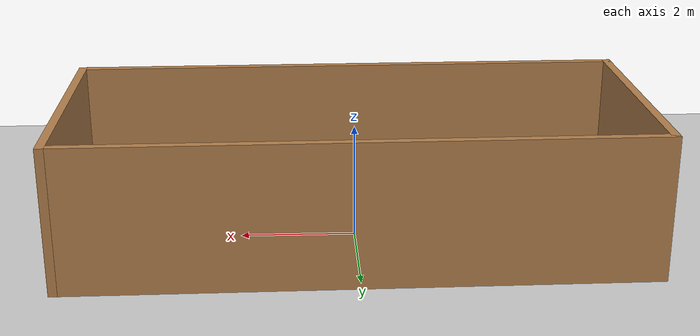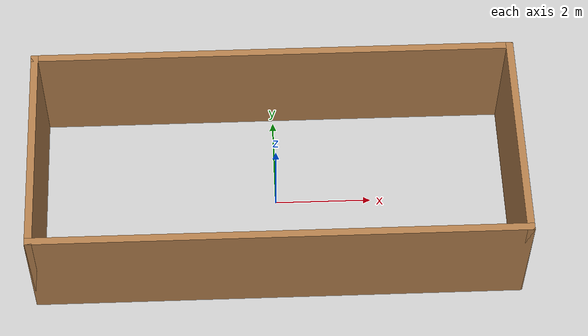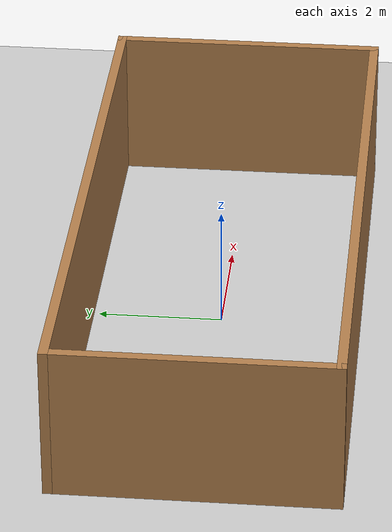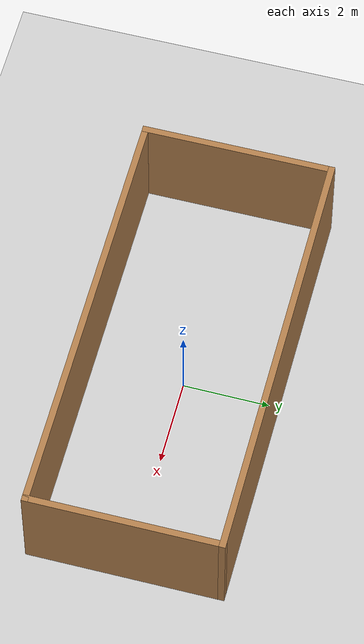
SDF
<sdf version="1.6">
 <world name="default">
  <model name="ground_plane">
   <static>1</static>
   <link name="link">
    <collision name="collision">
     <geometry><plane><normal>0 0 1</normal><size>100 100</size></plane></geometry>
     <surface><friction><ode><mu>100</mu><mu2>50</mu2></ode></friction></surface>
    </collision>
    <visual name="visual">
     <cast_shadows>0</cast_shadows>
     <geometry><plane><normal>0 0 1</normal><size>100 100</size></plane></geometry>
     <material>
      <script><uri>file://media/materials/scripts/gazebo.material</uri><name>Gazebo/Grey</name></script>
     </material>
    </visual>
   </link>
  </model>
  <model name="home1">
   <pose>0.002819 -0.011206 0 0 -0 0</pose>
   <link name="Wall_35">
    <collision name="Wall_35_Collision">
     <geometry><box><size>10 0.15 2.5</size></box></geometry>
     <pose>0 0 1.25 0 -0 0</pose>
    </collision>
    <visual name="Wall_35_Visual">
     <pose>0 0 1.25 0 -0 0</pose>
     <geometry><box><size>10 0.15 2.5</size></box></geometry>
     <material>
      <script><uri>file://media/materials/scripts/gazebo.material</uri><name>Gazebo/Wood</name></script>
      <ambient>1 1 1 1</ambient>
     </material>
    </visual>
    <pose>0 -2.175 0 0 -0 0</pose>
   </link>
   <link name="Wall_36">
    <collision name="Wall_36_Collision">
     <geometry><box><size>4.5 0.15 2.5</size></box></geometry>
     <pose>0 0 1.25 0 -0 0</pose>
    </collision>
    <visual name="Wall_36_Visual">
     <pose>0 0 1.25 0 -0 0</pose>
     <geometry><box><size>4.5 0.15 2.5</size></box></geometry>
     <material>
      <script><uri>file://media/materials/scripts/gazebo.material</uri><name>Gazebo/Wood</name></script>
      <ambient>1 1 1 1</ambient>
     </material>
    </visual>
    <pose>4.925 0 0 0 -0 1.5708</pose>
   </link>
   <link name="Wall_37">
    <collision name="Wall_37_Collision">
     <geometry><box><size>10 0.15 2.5</size></box></geometry>
     <pose>0 0 1.25 0 -0 0</pose>
    </collision>
    <visual name="Wall_37_Visual">
     <pose>0 0 1.25 0 -0 0</pose>
     <geometry><box><size>10 0.15 2.5</size></box></geometry>
     <material>
      <script><uri>file://media/materials/scripts/gazebo.material</uri><name>Gazebo/Wood</name></script>
      <ambient>1 1 1 1</ambient>
     </material>
    </visual>
    <pose>0 2.175 0 0 -0 3.14159</pose>
   </link>
   <link name="Wall_38">
    <collision name="Wall_38_Collision">
     <geometry><box><size>4.5 0.15 2.5</size></box></geometry>
     <pose>0 0 1.25 0 -0 0</pose>
    </collision>
    <visual name="Wall_38_Visual">
     <pose>0 0 1.25 0 -0 0</pose>
     <geometry><box><size>4.5 0.15 2.5</size></box></geometry>
     <material>
      <script><uri>file://media/materials/scripts/gazebo.material</uri><name>Gazebo/Wood</name></script>
      <ambient>1 1 1 1</ambient>
     </material>
    </visual>
    <pose>-4.925 0 0 0 0 -1.5708</pose>
   </link>
   <static>1</static>
  </model>
 </world>
</sdf>
